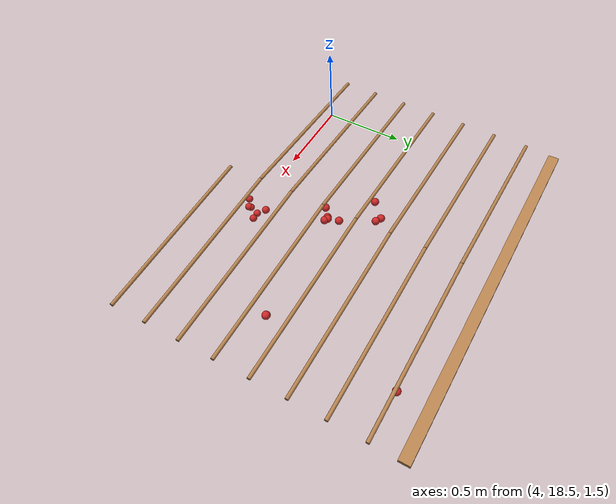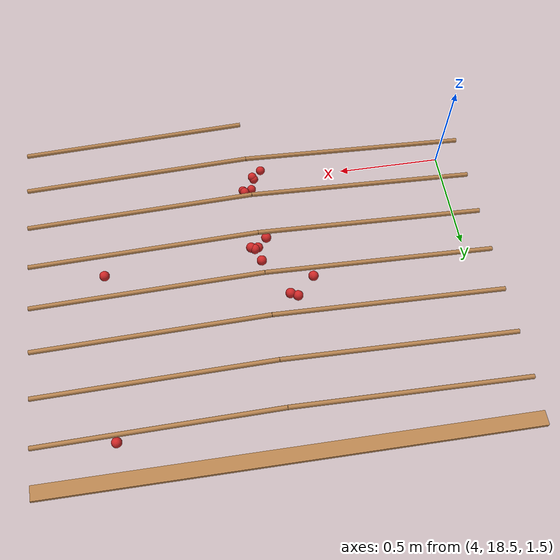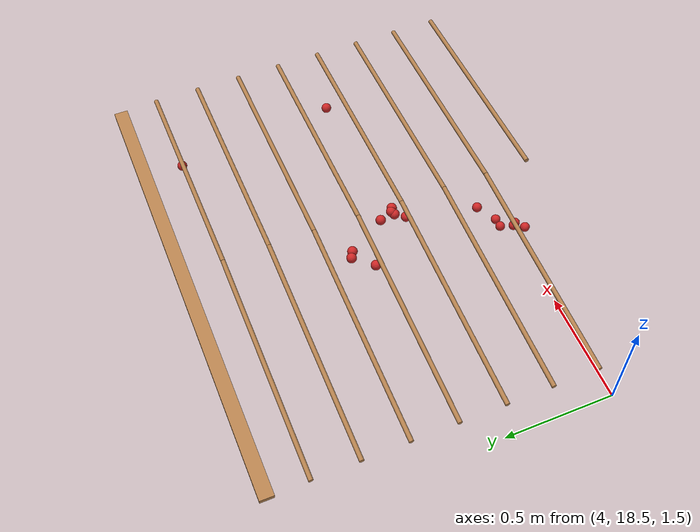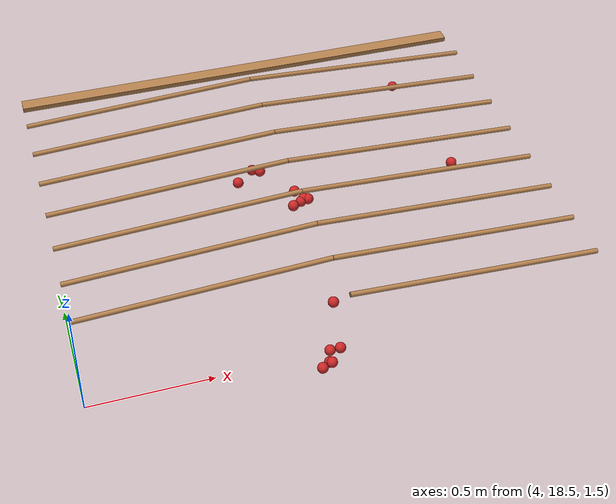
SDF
<sdf version="1.4">
 <model name="pergola">
  <link name="beam_32">
   <pose>5.0 20.0 1.81 0 0 0</pose>
   <collision name="collision"><geometry><box><size>2.0 0.06 0.02</size></box></geometry></collision>
   <visual name="visual">
    <geometry><box><size>2.0 0.06 0.02</size></box></geometry>
    <material><script><name>Gazebo/Wood</name></script></material>
   </visual>
   <inertial>
    <mass>5</mass>
    <inertia>
     <ixx>0.0016666666666666668</ixx>
     <ixy>0.0</ixy>
     <ixz>0.0</ixz>
     <iyy>1.6681666666666664</iyy>
     <iyz>0.0</iyz>
     <izz>1.6668333333333332</izz>
    </inertia>
   </inertial>
  </link>
  <link name="vine_585">
   <pose>5.5 18.430000000000003 1.85 0 -1.5208379310729538 0</pose>
   <collision name="collision">
    <geometry><cylinder><radius>0.01</radius><length>1.0012492197250393</length></cylinder></geometry>
   </collision>
   <visual name="visual">
    <geometry><cylinder><radius>0.01</radius><length>1.0012492197250393</length></cylinder></geometry>
    <material><script><name>Gazebo/WoodFloor</name></script></material>
   </visual>
   <inertial>
    <mass>5</mass>
    <inertia>
     <ixx>0.41783333333333345</ixx>
     <ixy>0.0</ixy>
     <ixz>0.0</ixz>
     <iyy>0.41783333333333345</iyy>
     <iyz>0.0</iyz>
     <izz>0.00025</izz>
    </inertia>
   </inertial>
  </link>
  <link name="vine_586">
   <pose>4.5 18.630000000000003 1.85 0 1.5208379310729538 0</pose>
   <collision name="collision">
    <geometry><cylinder><radius>0.01</radius><length>1.0012492197250393</length></cylinder></geometry>
   </collision>
   <visual name="visual">
    <geometry><cylinder><radius>0.01</radius><length>1.0012492197250393</length></cylinder></geometry>
    <material><script><name>Gazebo/WoodFloor</name></script></material>
   </visual>
   <inertial>
    <mass>5</mass>
    <inertia>
     <ixx>0.41783333333333345</ixx>
     <ixy>0.0</ixy>
     <ixz>0.0</ixz>
     <iyy>0.41783333333333345</iyy>
     <iyz>0.0</iyz>
     <izz>0.00025</izz>
    </inertia>
   </inertial>
  </link>
  <link name="vine_587">
   <pose>5.5 18.630000000000003 1.85 0 -1.5208379310729538 0</pose>
   <collision name="collision">
    <geometry><cylinder><radius>0.01</radius><length>1.0012492197250393</length></cylinder></geometry>
   </collision>
   <visual name="visual">
    <geometry><cylinder><radius>0.01</radius><length>1.0012492197250393</length></cylinder></geometry>
    <material><script><name>Gazebo/WoodFloor</name></script></material>
   </visual>
   <inertial>
    <mass>5</mass>
    <inertia>
     <ixx>0.41783333333333345</ixx>
     <ixy>0.0</ixy>
     <ixz>0.0</ixz>
     <iyy>0.41783333333333345</iyy>
     <iyz>0.0</iyz>
     <izz>0.00025</izz>
    </inertia>
   </inertial>
  </link>
  <link name="vine_588">
   <pose>4.5 18.830000000000002 1.85 0 1.5208379310729538 0</pose>
   <collision name="collision">
    <geometry><cylinder><radius>0.01</radius><length>1.0012492197250393</length></cylinder></geometry>
   </collision>
   <visual name="visual">
    <geometry><cylinder><radius>0.01</radius><length>1.0012492197250393</length></cylinder></geometry>
    <material><script><name>Gazebo/WoodFloor</name></script></material>
   </visual>
   <inertial>
    <mass>5</mass>
    <inertia>
     <ixx>0.41783333333333345</ixx>
     <ixy>0.0</ixy>
     <ixz>0.0</ixz>
     <iyy>0.41783333333333345</iyy>
     <iyz>0.0</iyz>
     <izz>0.00025</izz>
    </inertia>
   </inertial>
  </link>
  <link name="vine_589">
   <pose>5.5 18.830000000000002 1.85 0 -1.5208379310729538 0</pose>
   <collision name="collision">
    <geometry><cylinder><radius>0.01</radius><length>1.0012492197250393</length></cylinder></geometry>
   </collision>
   <visual name="visual">
    <geometry><cylinder><radius>0.01</radius><length>1.0012492197250393</length></cylinder></geometry>
    <material><script><name>Gazebo/WoodFloor</name></script></material>
   </visual>
   <inertial>
    <mass>5</mass>
    <inertia>
     <ixx>0.41783333333333345</ixx>
     <ixy>0.0</ixy>
     <ixz>0.0</ixz>
     <iyy>0.41783333333333345</iyy>
     <iyz>0.0</iyz>
     <izz>0.00025</izz>
    </inertia>
   </inertial>
  </link>
  <link name="vine_590">
   <pose>4.5 19.03 1.85 0 1.5208379310729538 0</pose>
   <collision name="collision">
    <geometry><cylinder><radius>0.01</radius><length>1.0012492197250393</length></cylinder></geometry>
   </collision>
   <visual name="visual">
    <geometry><cylinder><radius>0.01</radius><length>1.0012492197250393</length></cylinder></geometry>
    <material><script><name>Gazebo/WoodFloor</name></script></material>
   </visual>
   <inertial>
    <mass>5</mass>
    <inertia>
     <ixx>0.41783333333333345</ixx>
     <ixy>0.0</ixy>
     <ixz>0.0</ixz>
     <iyy>0.41783333333333345</iyy>
     <iyz>0.0</iyz>
     <izz>0.00025</izz>
    </inertia>
   </inertial>
  </link>
  <link name="vine_591">
   <pose>5.5 19.03 1.85 0 -1.5208379310729538 0</pose>
   <collision name="collision">
    <geometry><cylinder><radius>0.01</radius><length>1.0012492197250393</length></cylinder></geometry>
   </collision>
   <visual name="visual">
    <geometry><cylinder><radius>0.01</radius><length>1.0012492197250393</length></cylinder></geometry>
    <material><script><name>Gazebo/WoodFloor</name></script></material>
   </visual>
   <inertial>
    <mass>5</mass>
    <inertia>
     <ixx>0.41783333333333345</ixx>
     <ixy>0.0</ixy>
     <ixz>0.0</ixz>
     <iyy>0.41783333333333345</iyy>
     <iyz>0.0</iyz>
     <izz>0.00025</izz>
    </inertia>
   </inertial>
  </link>
  <link name="vine_592">
   <pose>4.5 19.230000000000004 1.85 0 1.5208379310729538 0</pose>
   <collision name="collision">
    <geometry><cylinder><radius>0.01</radius><length>1.0012492197250393</length></cylinder></geometry>
   </collision>
   <visual name="visual">
    <geometry><cylinder><radius>0.01</radius><length>1.0012492197250393</length></cylinder></geometry>
    <material><script><name>Gazebo/WoodFloor</name></script></material>
   </visual>
   <inertial>
    <mass>5</mass>
    <inertia>
     <ixx>0.41783333333333345</ixx>
     <ixy>0.0</ixy>
     <ixz>0.0</ixz>
     <iyy>0.41783333333333345</iyy>
     <iyz>0.0</iyz>
     <izz>0.00025</izz>
    </inertia>
   </inertial>
  </link>
  <link name="vine_593">
   <pose>5.5 19.230000000000004 1.85 0 -1.5208379310729538 0</pose>
   <collision name="collision">
    <geometry><cylinder><radius>0.01</radius><length>1.0012492197250393</length></cylinder></geometry>
   </collision>
   <visual name="visual">
    <geometry><cylinder><radius>0.01</radius><length>1.0012492197250393</length></cylinder></geometry>
    <material><script><name>Gazebo/WoodFloor</name></script></material>
   </visual>
   <inertial>
    <mass>5</mass>
    <inertia>
     <ixx>0.41783333333333345</ixx>
     <ixy>0.0</ixy>
     <ixz>0.0</ixz>
     <iyy>0.41783333333333345</iyy>
     <iyz>0.0</iyz>
     <izz>0.00025</izz>
    </inertia>
   </inertial>
  </link>
  <link name="vine_594">
   <pose>4.5 19.430000000000003 1.85 0 1.5208379310729538 0</pose>
   <collision name="collision">
    <geometry><cylinder><radius>0.01</radius><length>1.0012492197250393</length></cylinder></geometry>
   </collision>
   <visual name="visual">
    <geometry><cylinder><radius>0.01</radius><length>1.0012492197250393</length></cylinder></geometry>
    <material><script><name>Gazebo/WoodFloor</name></script></material>
   </visual>
   <inertial>
    <mass>5</mass>
    <inertia>
     <ixx>0.41783333333333345</ixx>
     <ixy>0.0</ixy>
     <ixz>0.0</ixz>
     <iyy>0.41783333333333345</iyy>
     <iyz>0.0</iyz>
     <izz>0.00025</izz>
    </inertia>
   </inertial>
  </link>
  <link name="vine_595">
   <pose>5.5 19.430000000000003 1.85 0 -1.5208379310729538 0</pose>
   <collision name="collision">
    <geometry><cylinder><radius>0.01</radius><length>1.0012492197250393</length></cylinder></geometry>
   </collision>
   <visual name="visual">
    <geometry><cylinder><radius>0.01</radius><length>1.0012492197250393</length></cylinder></geometry>
    <material><script><name>Gazebo/WoodFloor</name></script></material>
   </visual>
   <inertial>
    <mass>5</mass>
    <inertia>
     <ixx>0.41783333333333345</ixx>
     <ixy>0.0</ixy>
     <ixz>0.0</ixz>
     <iyy>0.41783333333333345</iyy>
     <iyz>0.0</iyz>
     <izz>0.00025</izz>
    </inertia>
   </inertial>
  </link>
  <link name="vine_596">
   <pose>4.5 19.630000000000003 1.85 0 1.5208379310729538 0</pose>
   <collision name="collision">
    <geometry><cylinder><radius>0.01</radius><length>1.0012492197250393</length></cylinder></geometry>
   </collision>
   <visual name="visual">
    <geometry><cylinder><radius>0.01</radius><length>1.0012492197250393</length></cylinder></geometry>
    <material><script><name>Gazebo/WoodFloor</name></script></material>
   </visual>
   <inertial>
    <mass>5</mass>
    <inertia>
     <ixx>0.41783333333333345</ixx>
     <ixy>0.0</ixy>
     <ixz>0.0</ixz>
     <iyy>0.41783333333333345</iyy>
     <iyz>0.0</iyz>
     <izz>0.00025</izz>
    </inertia>
   </inertial>
  </link>
  <link name="vine_597">
   <pose>5.5 19.630000000000003 1.85 0 -1.5208379310729538 0</pose>
   <collision name="collision">
    <geometry><cylinder><radius>0.01</radius><length>1.0012492197250393</length></cylinder></geometry>
   </collision>
   <visual name="visual">
    <geometry><cylinder><radius>0.01</radius><length>1.0012492197250393</length></cylinder></geometry>
    <material><script><name>Gazebo/WoodFloor</name></script></material>
   </visual>
   <inertial>
    <mass>5</mass>
    <inertia>
     <ixx>0.41783333333333345</ixx>
     <ixy>0.0</ixy>
     <ixz>0.0</ixz>
     <iyy>0.41783333333333345</iyy>
     <iyz>0.0</iyz>
     <izz>0.00025</izz>
    </inertia>
   </inertial>
  </link>
  <link name="vine_598">
   <pose>4.5 19.830000000000002 1.85 0 1.5208379310729538 0</pose>
   <collision name="collision">
    <geometry><cylinder><radius>0.01</radius><length>1.0012492197250393</length></cylinder></geometry>
   </collision>
   <visual name="visual">
    <geometry><cylinder><radius>0.01</radius><length>1.0012492197250393</length></cylinder></geometry>
    <material><script><name>Gazebo/WoodFloor</name></script></material>
   </visual>
   <inertial>
    <mass>5</mass>
    <inertia>
     <ixx>0.41783333333333345</ixx>
     <ixy>0.0</ixy>
     <ixz>0.0</ixz>
     <iyy>0.41783333333333345</iyy>
     <iyz>0.0</iyz>
     <izz>0.00025</izz>
    </inertia>
   </inertial>
  </link>
  <link name="vine_599">
   <pose>5.5 19.830000000000002 1.85 0 -1.5208379310729538 0</pose>
   <collision name="collision">
    <geometry><cylinder><radius>0.01</radius><length>1.0012492197250393</length></cylinder></geometry>
   </collision>
   <visual name="visual">
    <geometry><cylinder><radius>0.01</radius><length>1.0012492197250393</length></cylinder></geometry>
    <material><script><name>Gazebo/WoodFloor</name></script></material>
   </visual>
   <inertial>
    <mass>5</mass>
    <inertia>
     <ixx>0.41783333333333345</ixx>
     <ixy>0.0</ixy>
     <ixz>0.0</ixz>
     <iyy>0.41783333333333345</iyy>
     <iyz>0.0</iyz>
     <izz>0.00025</izz>
    </inertia>
   </inertial>
  </link>
  <link name="fruit_11">
   <pose>4.962929162946907 19.023340274869668 1.8122406191956901 0 0 0</pose>
   <collision name="fruit_collision_11"><geometry><sphere><radius>0.022</radius></sphere></geometry></collision>
   <visual name="visual">
    <geometry><sphere><radius>0.022</radius></sphere></geometry>
    <material><script><name>Gazebo/Red</name></script></material>
   </visual>
   <inertial>
    <mass>0.05</mass>
    <inertia>
     <ixx>9.679999999999999e-06</ixx>
     <ixy>0.0</ixy>
     <ixz>0.0</ixz>
     <iyy>9.679999999999999e-06</iyy>
     <iyz>0.0</iyz>
     <izz>9.679999999999999e-06</izz>
    </inertia>
   </inertial>
   <sensor name="fruit_contact_11" type="contact">
    <contact><collision>fruit_collision_11</collision></contact>
   </sensor>
  </link>
  <link name="fruit_42">
   <pose>5.0113399795382785 18.640227517106418 1.6237396435413316 0 0 0</pose>
   <collision name="fruit_collision_42"><geometry><sphere><radius>0.022</radius></sphere></geometry></collision>
   <visual name="visual">
    <geometry><sphere><radius>0.022</radius></sphere></geometry>
    <material><script><name>Gazebo/Red</name></script></material>
   </visual>
   <inertial>
    <mass>0.05</mass>
    <inertia>
     <ixx>9.679999999999999e-06</ixx>
     <ixy>0.0</ixy>
     <ixz>0.0</ixz>
     <iyy>9.679999999999999e-06</iyy>
     <iyz>0.0</iyz>
     <izz>9.679999999999999e-06</izz>
    </inertia>
   </inertial>
   <sensor name="fruit_contact_42" type="contact">
    <contact><collision>fruit_collision_42</collision></contact>
   </sensor>
  </link>
  <link name="fruit_71">
   <pose>5.6799272232516955 19.108107841779105 1.80356961726848 0 0 0</pose>
   <collision name="fruit_collision_71"><geometry><sphere><radius>0.022</radius></sphere></geometry></collision>
   <visual name="visual">
    <geometry><sphere><radius>0.022</radius></sphere></geometry>
    <material><script><name>Gazebo/Red</name></script></material>
   </visual>
   <inertial>
    <mass>0.05</mass>
    <inertia>
     <ixx>9.679999999999999e-06</ixx>
     <ixy>0.0</ixy>
     <ixz>0.0</ixz>
     <iyy>9.679999999999999e-06</iyy>
     <iyz>0.0</iyz>
     <izz>9.679999999999999e-06</izz>
    </inertia>
   </inertial>
   <sensor name="fruit_contact_71" type="contact">
    <contact><collision>fruit_collision_71</collision></contact>
   </sensor>
  </link>
  <link name="fruit_78">
   <pose>4.904873302403366 18.43381115880455 1.4993921865738489 0 0 0</pose>
   <collision name="fruit_collision_78"><geometry><sphere><radius>0.022</radius></sphere></geometry></collision>
   <visual name="visual">
    <geometry><sphere><radius>0.022</radius></sphere></geometry>
    <material><script><name>Gazebo/Red</name></script></material>
   </visual>
   <inertial>
    <mass>0.05</mass>
    <inertia>
     <ixx>9.679999999999999e-06</ixx>
     <ixy>0.0</ixy>
     <ixz>0.0</ixz>
     <iyy>9.679999999999999e-06</iyy>
     <iyz>0.0</iyz>
     <izz>9.679999999999999e-06</izz>
    </inertia>
   </inertial>
   <sensor name="fruit_contact_78" type="contact">
    <contact><collision>fruit_collision_78</collision></contact>
   </sensor>
  </link>
  <link name="fruit_170">
   <pose>5.684357046543857 19.816762550275858 1.7054727246183121 0 0 0</pose>
   <collision name="fruit_collision_170"><geometry><sphere><radius>0.022</radius></sphere></geometry></collision>
   <visual name="visual">
    <geometry><sphere><radius>0.022</radius></sphere></geometry>
    <material><script><name>Gazebo/Red</name></script></material>
   </visual>
   <inertial>
    <mass>0.05</mass>
    <inertia>
     <ixx>9.679999999999999e-06</ixx>
     <ixy>0.0</ixy>
     <ixz>0.0</ixz>
     <iyy>9.679999999999999e-06</iyy>
     <iyz>0.0</iyz>
     <izz>9.679999999999999e-06</izz>
    </inertia>
   </inertial>
   <sensor name="fruit_contact_170" type="contact">
    <contact><collision>fruit_collision_170</collision></contact>
   </sensor>
  </link>
  <link name="fruit_355">
   <pose>4.788766546780555 19.23676491267419 1.800499214552871 0 0 0</pose>
   <collision name="fruit_collision_355"><geometry><sphere><radius>0.022</radius></sphere></geometry></collision>
   <visual name="visual">
    <geometry><sphere><radius>0.022</radius></sphere></geometry>
    <material><script><name>Gazebo/Red</name></script></material>
   </visual>
   <inertial>
    <mass>0.05</mass>
    <inertia>
     <ixx>9.679999999999999e-06</ixx>
     <ixy>0.0</ixy>
     <ixz>0.0</ixz>
     <iyy>9.679999999999999e-06</iyy>
     <iyz>0.0</iyz>
     <izz>9.679999999999999e-06</izz>
    </inertia>
   </inertial>
   <sensor name="fruit_contact_355" type="contact">
    <contact><collision>fruit_collision_355</collision></contact>
   </sensor>
  </link>
  <link name="fruit_436">
   <pose>5.019083293366302 19.068051349248375 1.802116468574813 0 0 0</pose>
   <collision name="fruit_collision_436"><geometry><sphere><radius>0.022</radius></sphere></geometry></collision>
   <visual name="visual">
    <geometry><sphere><radius>0.022</radius></sphere></geometry>
    <material><script><name>Gazebo/Red</name></script></material>
   </visual>
   <inertial>
    <mass>0.05</mass>
    <inertia>
     <ixx>9.679999999999999e-06</ixx>
     <ixy>0.0</ixy>
     <ixz>0.0</ixz>
     <iyy>9.679999999999999e-06</iyy>
     <iyz>0.0</iyz>
     <izz>9.679999999999999e-06</izz>
    </inertia>
   </inertial>
   <sensor name="fruit_contact_436" type="contact">
    <contact><collision>fruit_collision_436</collision></contact>
   </sensor>
  </link>
  <link name="fruit_483">
   <pose>5.035156406277737 19.058178413661086 1.802199037691665 0 0 0</pose>
   <collision name="fruit_collision_483"><geometry><sphere><radius>0.022</radius></sphere></geometry></collision>
   <visual name="visual">
    <geometry><sphere><radius>0.022</radius></sphere></geometry>
    <material><script><name>Gazebo/Red</name></script></material>
   </visual>
   <inertial>
    <mass>0.05</mass>
    <inertia>
     <ixx>9.679999999999999e-06</ixx>
     <ixy>0.0</ixy>
     <ixz>0.0</ixz>
     <iyy>9.679999999999999e-06</iyy>
     <iyz>0.0</iyz>
     <izz>9.679999999999999e-06</izz>
    </inertia>
   </inertial>
   <sensor name="fruit_contact_483" type="contact">
    <contact><collision>fruit_collision_483</collision></contact>
   </sensor>
  </link>
  <link name="fruit_501">
   <pose>4.951128220778127 18.459555195797392 1.4888148479100871 0 0 0</pose>
   <collision name="fruit_collision_501"><geometry><sphere><radius>0.022</radius></sphere></geometry></collision>
   <visual name="visual">
    <geometry><sphere><radius>0.022</radius></sphere></geometry>
    <material><script><name>Gazebo/Red</name></script></material>
   </visual>
   <inertial>
    <mass>0.05</mass>
    <inertia>
     <ixx>9.679999999999999e-06</ixx>
     <ixy>0.0</ixy>
     <ixz>0.0</ixz>
     <iyy>9.679999999999999e-06</iyy>
     <iyz>0.0</iyz>
     <izz>9.679999999999999e-06</izz>
    </inertia>
   </inertial>
   <sensor name="fruit_contact_501" type="contact">
    <contact><collision>fruit_collision_501</collision></contact>
   </sensor>
  </link>
  <link name="fruit_505">
   <pose>4.944518390913418 18.4699280315934 1.4808609436546394 0 0 0</pose>
   <collision name="fruit_collision_505"><geometry><sphere><radius>0.022</radius></sphere></geometry></collision>
   <visual name="visual">
    <geometry><sphere><radius>0.022</radius></sphere></geometry>
    <material><script><name>Gazebo/Red</name></script></material>
   </visual>
   <inertial>
    <mass>0.05</mass>
    <inertia>
     <ixx>9.679999999999999e-06</ixx>
     <ixy>0.0</ixy>
     <ixz>0.0</ixz>
     <iyy>9.679999999999999e-06</iyy>
     <iyz>0.0</iyz>
     <izz>9.679999999999999e-06</izz>
    </inertia>
   </inertial>
   <sensor name="fruit_contact_505" type="contact">
    <contact><collision>fruit_collision_505</collision></contact>
   </sensor>
  </link>
  <link name="fruit_651">
   <pose>4.898321275640823 19.29832042075218 1.7875581972829042 0 0 0</pose>
   <collision name="fruit_collision_651"><geometry><sphere><radius>0.022</radius></sphere></geometry></collision>
   <visual name="visual">
    <geometry><sphere><radius>0.022</radius></sphere></geometry>
    <material><script><name>Gazebo/Red</name></script></material>
   </visual>
   <inertial>
    <mass>0.05</mass>
    <inertia>
     <ixx>9.679999999999999e-06</ixx>
     <ixy>0.0</ixy>
     <ixz>0.0</ixz>
     <iyy>9.679999999999999e-06</iyy>
     <iyz>0.0</iyz>
     <izz>9.679999999999999e-06</izz>
    </inertia>
   </inertial>
   <sensor name="fruit_contact_651" type="contact">
    <contact><collision>fruit_collision_651</collision></contact>
   </sensor>
  </link>
  <link name="fruit_665">
   <pose>4.96461394379603 18.528257899227874 1.4788484606840164 0 0 0</pose>
   <collision name="fruit_collision_665"><geometry><sphere><radius>0.022</radius></sphere></geometry></collision>
   <visual name="visual">
    <geometry><sphere><radius>0.022</radius></sphere></geometry>
    <material><script><name>Gazebo/Red</name></script></material>
   </visual>
   <inertial>
    <mass>0.05</mass>
    <inertia>
     <ixx>9.679999999999999e-06</ixx>
     <ixy>0.0</ixy>
     <ixz>0.0</ixz>
     <iyy>9.679999999999999e-06</iyy>
     <iyz>0.0</iyz>
     <izz>9.679999999999999e-06</izz>
    </inertia>
   </inertial>
   <sensor name="fruit_contact_665" type="contact">
    <contact><collision>fruit_collision_665</collision></contact>
   </sensor>
  </link>
  <link name="fruit_814">
   <pose>5.004739794477957 19.05817243704977 1.7953677890059327 0 0 0</pose>
   <collision name="fruit_collision_814"><geometry><sphere><radius>0.022</radius></sphere></geometry></collision>
   <visual name="visual">
    <geometry><sphere><radius>0.022</radius></sphere></geometry>
    <material><script><name>Gazebo/Red</name></script></material>
   </visual>
   <inertial>
    <mass>0.05</mass>
    <inertia>
     <ixx>9.679999999999999e-06</ixx>
     <ixy>0.0</ixy>
     <ixz>0.0</ixz>
     <iyy>9.679999999999999e-06</iyy>
     <iyz>0.0</iyz>
     <izz>9.679999999999999e-06</izz>
    </inertia>
   </inertial>
   <sensor name="fruit_contact_814" type="contact">
    <contact><collision>fruit_collision_814</collision></contact>
   </sensor>
  </link>
  <link name="fruit_919">
   <pose>4.868194376936253 19.314251889743808 1.787999018876681 0 0 0</pose>
   <collision name="fruit_collision_919"><geometry><sphere><radius>0.022</radius></sphere></geometry></collision>
   <visual name="visual">
    <geometry><sphere><radius>0.022</radius></sphere></geometry>
    <material><script><name>Gazebo/Red</name></script></material>
   </visual>
   <inertial>
    <mass>0.05</mass>
    <inertia>
     <ixx>9.679999999999999e-06</ixx>
     <ixy>0.0</ixy>
     <ixz>0.0</ixz>
     <iyy>9.679999999999999e-06</iyy>
     <iyz>0.0</iyz>
     <izz>9.679999999999999e-06</izz>
    </inertia>
   </inertial>
   <sensor name="fruit_contact_919" type="contact">
    <contact><collision>fruit_collision_919</collision></contact>
   </sensor>
  </link>
  <link name="fruit_949">
   <pose>4.997736437674056 19.125985290933414 1.7961085868257916 0 0 0</pose>
   <collision name="fruit_collision_949"><geometry><sphere><radius>0.022</radius></sphere></geometry></collision>
   <visual name="visual">
    <geometry><sphere><radius>0.022</radius></sphere></geometry>
    <material><script><name>Gazebo/Red</name></script></material>
   </visual>
   <inertial>
    <mass>0.05</mass>
    <inertia>
     <ixx>9.679999999999999e-06</ixx>
     <ixy>0.0</ixy>
     <ixz>0.0</ixz>
     <iyy>9.679999999999999e-06</iyy>
     <iyz>0.0</iyz>
     <izz>9.679999999999999e-06</izz>
    </inertia>
   </inertial>
   <sensor name="fruit_contact_949" type="contact">
    <contact><collision>fruit_collision_949</collision></contact>
   </sensor>
  </link>
  <link name="fruit_984">
   <pose>5.008276631780327 18.529896998427535 1.4787491008618647 0 0 0</pose>
   <collision name="fruit_collision_984"><geometry><sphere><radius>0.022</radius></sphere></geometry></collision>
   <visual name="visual">
    <geometry><sphere><radius>0.022</radius></sphere></geometry>
    <material><script><name>Gazebo/Red</name></script></material>
   </visual>
   <inertial>
    <mass>0.05</mass>
    <inertia>
     <ixx>9.679999999999999e-06</ixx>
     <ixy>0.0</ixy>
     <ixz>0.0</ixz>
     <iyy>9.679999999999999e-06</iyy>
     <iyz>0.0</iyz>
     <izz>9.679999999999999e-06</izz>
    </inertia>
   </inertial>
   <sensor name="fruit_contact_984" type="contact">
    <contact><collision>fruit_collision_984</collision></contact>
   </sensor>
  </link>
 </model>
</sdf>
